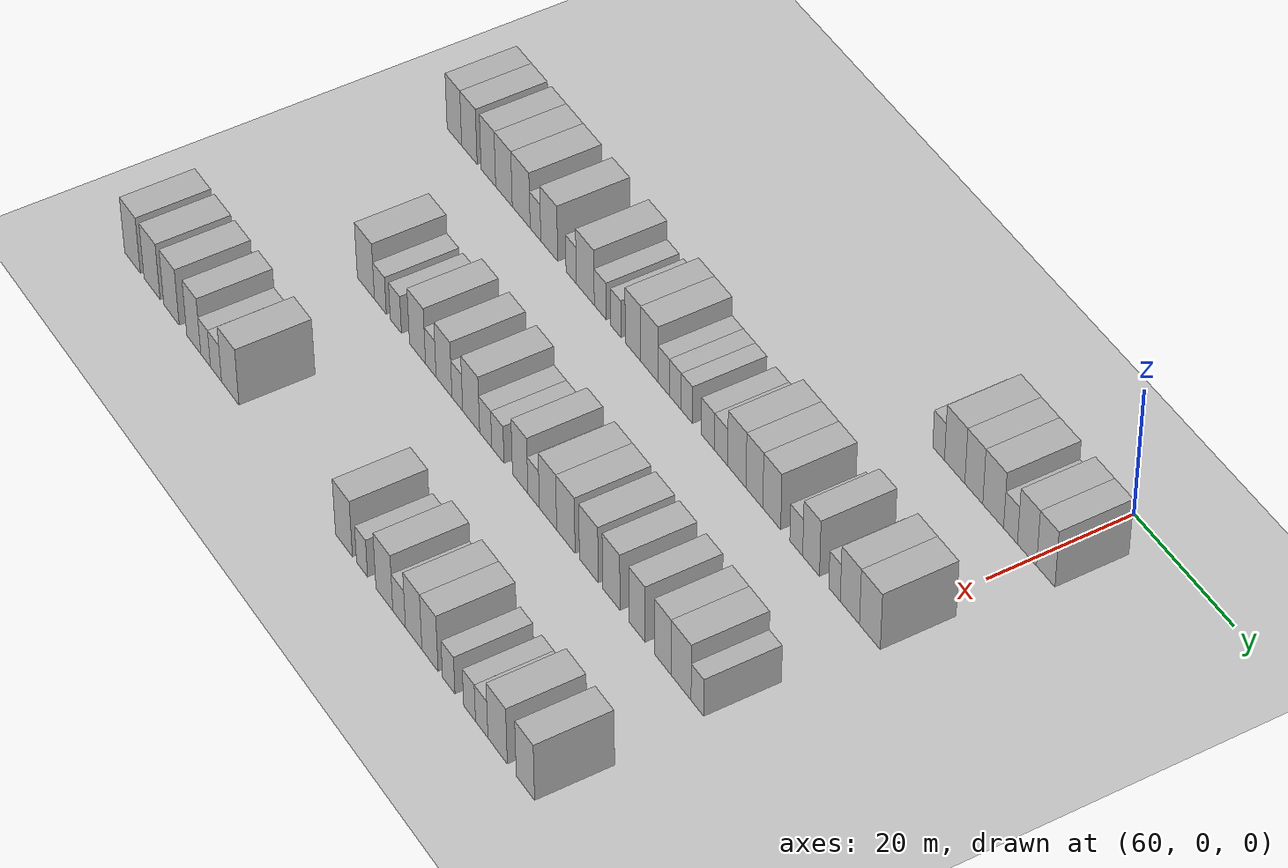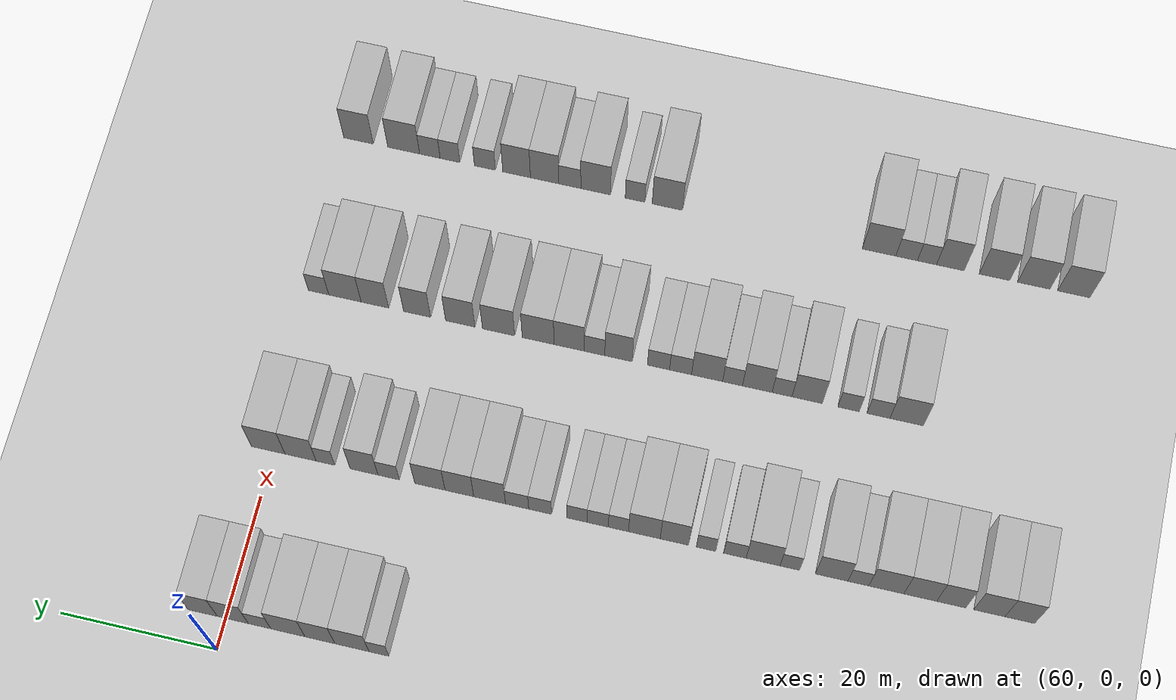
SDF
<sdf version="1.6">
 <world name="default">
  <include>
   <name>ground_plane_2</name>
   <uri>model://HANNAS_ground_plane</uri>
   <pose>100 0 0  0 0 0</pose>
  </include>
  <model name="building_485">
   <static>1</static>
   <pose>69.0000 -19.5323 0 0.000000 0.000000 0.000000</pose>
   <link name="link">
    <pose>0 0 3.00 0 0 0</pose>
    <collision name="collision"><geometry><box><size>10.0000 2.5244 6.0000</size></box></geometry></collision>
    <visual name="visual">
     <cast_shadows>0</cast_shadows>
     <geometry><box><size>10.0000 2.5244 6.0000</size></box></geometry>
     <material>
      <script>
       <uri>model://HANNAS_wall/materials/scripts</uri>
       <uri>model://HANNAS_wall/materials/textures</uri>
       <name>vrc/HANNAS_wall</name>
      </script>
     </material>
    </visual>
   </link>
  </model>
  <model name="building_486">
   <static>1</static>
   <pose>69.0000 -16.1030 0 0.000000 0.000000 0.000000</pose>
   <link name="link">
    <pose>0 0 4.50 0 0 0</pose>
    <collision name="collision"><geometry><box><size>10.0000 4.3342 9.0000</size></box></geometry></collision>
    <visual name="visual">
     <cast_shadows>0</cast_shadows>
     <geometry><box><size>10.0000 4.3342 9.0000</size></box></geometry>
     <material>
      <script>
       <uri>model://HANNAS_wall/materials/scripts</uri>
       <uri>model://HANNAS_wall/materials/textures</uri>
       <name>vrc/HANNAS_wall</name>
      </script>
     </material>
    </visual>
   </link>
  </model>
  <model name="building_487">
   <static>1</static>
   <pose>69.0000 -12.0336 0 0.000000 0.000000 0.000000</pose>
   <link name="link">
    <pose>0 0 4.50 0 0 0</pose>
    <collision name="collision"><geometry><box><size>10.0000 3.8046 9.0000</size></box></geometry></collision>
    <visual name="visual">
     <cast_shadows>0</cast_shadows>
     <geometry><box><size>10.0000 3.8046 9.0000</size></box></geometry>
     <material>
      <script>
       <uri>model://HANNAS_wall/materials/scripts</uri>
       <uri>model://HANNAS_wall/materials/textures</uri>
       <name>vrc/HANNAS_wall</name>
      </script>
     </material>
    </visual>
   </link>
  </model>
  <model name="building_488">
   <static>1</static>
   <pose>69.0000 -7.9467 0 0.000000 0.000000 0.000000</pose>
   <link name="link">
    <pose>0 0 4.50 0 0 0</pose>
    <collision name="collision"><geometry><box><size>10.0000 4.3692 9.0000</size></box></geometry></collision>
    <visual name="visual">
     <cast_shadows>0</cast_shadows>
     <geometry><box><size>10.0000 4.3692 9.0000</size></box></geometry>
     <material>
      <script>
       <uri>model://HANNAS_wall/materials/scripts</uri>
       <uri>model://HANNAS_wall/materials/textures</uri>
       <name>vrc/HANNAS_wall</name>
      </script>
     </material>
    </visual>
   </link>
  </model>
  <model name="building_489">
   <static>1</static>
   <pose>69.0000 -4.3219 0 0.000000 0.000000 0.000000</pose>
   <link name="link">
    <pose>0 0 3.00 0 0 0</pose>
    <collision name="collision"><geometry><box><size>10.0000 2.8804 6.0000</size></box></geometry></collision>
    <visual name="visual">
     <cast_shadows>0</cast_shadows>
     <geometry><box><size>10.0000 2.8804 6.0000</size></box></geometry>
     <material>
      <script>
       <uri>model://HANNAS_wall/materials/scripts</uri>
       <uri>model://HANNAS_wall/materials/textures</uri>
       <name>vrc/HANNAS_wall</name>
      </script>
     </material>
    </visual>
   </link>
  </model>
  <model name="building_490">
   <static>1</static>
   <pose>69.0000 -0.9053 0 0.000000 0.000000 0.000000</pose>
   <link name="link">
    <pose>0 0 4.50 0 0 0</pose>
    <collision name="collision"><geometry><box><size>10.0000 3.9529 9.0000</size></box></geometry></collision>
    <visual name="visual">
     <cast_shadows>0</cast_shadows>
     <geometry><box><size>10.0000 3.9529 9.0000</size></box></geometry>
     <material>
      <script>
       <uri>model://HANNAS_wall/materials/scripts</uri>
       <uri>model://HANNAS_wall/materials/textures</uri>
       <name>vrc/HANNAS_wall</name>
      </script>
     </material>
    </visual>
   </link>
  </model>
  <model name="building_491">
   <static>1</static>
   <pose>69.0000 2.9653 0 0.000000 0.000000 0.000000</pose>
   <link name="link">
    <pose>0 0 4.50 0 0 0</pose>
    <collision name="collision"><geometry><box><size>10.0000 3.7883 9.0000</size></box></geometry></collision>
    <visual name="visual">
     <cast_shadows>0</cast_shadows>
     <geometry><box><size>10.0000 3.7883 9.0000</size></box></geometry>
     <material>
      <script>
       <uri>model://HANNAS_wall/materials/scripts</uri>
       <uri>model://HANNAS_wall/materials/textures</uri>
       <name>vrc/HANNAS_wall</name>
      </script>
     </material>
    </visual>
   </link>
  </model>
  <model name="building_661">
   <static>1</static>
   <pose>91.0000 -95.5030 0 0.000000 0.000000 0.000000</pose>
   <link name="link">
    <pose>0 0 4.50 0 0 0</pose>
    <collision name="collision"><geometry><box><size>10.0000 3.7117 9.0000</size></box></geometry></collision>
    <visual name="visual">
     <cast_shadows>0</cast_shadows>
     <geometry><box><size>10.0000 3.7117 9.0000</size></box></geometry>
     <material>
      <script>
       <uri>model://HANNAS_wall/materials/scripts</uri>
       <uri>model://HANNAS_wall/materials/textures</uri>
       <name>vrc/HANNAS_wall</name>
      </script>
     </material>
    </visual>
   </link>
  </model>
  <model name="building_662">
   <static>1</static>
   <pose>91.0000 -91.6927 0 0.000000 0.000000 0.000000</pose>
   <link name="link">
    <pose>0 0 4.50 0 0 0</pose>
    <collision name="collision"><geometry><box><size>10.0000 3.9088 9.0000</size></box></geometry></collision>
    <visual name="visual">
     <cast_shadows>0</cast_shadows>
     <geometry><box><size>10.0000 3.9088 9.0000</size></box></geometry>
     <material>
      <script>
       <uri>model://HANNAS_wall/materials/scripts</uri>
       <uri>model://HANNAS_wall/materials/textures</uri>
       <name>vrc/HANNAS_wall</name>
      </script>
     </material>
    </visual>
   </link>
  </model>
  <model name="building_663">
   <static>1</static>
   <pose>91.0000 -86.9122 0 0.000000 0.000000 0.000000</pose>
   <link name="link">
    <pose>0 0 4.50 0 0 0</pose>
    <collision name="collision"><geometry><box><size>10.0000 3.6522 9.0000</size></box></geometry></collision>
    <visual name="visual">
     <cast_shadows>0</cast_shadows>
     <geometry><box><size>10.0000 3.6522 9.0000</size></box></geometry>
     <material>
      <script>
       <uri>model://HANNAS_wall/materials/scripts</uri>
       <uri>model://HANNAS_wall/materials/textures</uri>
       <name>vrc/HANNAS_wall</name>
      </script>
     </material>
    </visual>
   </link>
  </model>
  <model name="building_664">
   <static>1</static>
   <pose>91.0000 -83.0218 0 0.000000 0.000000 0.000000</pose>
   <link name="link">
    <pose>0 0 4.50 0 0 0</pose>
    <collision name="collision"><geometry><box><size>10.0000 4.1286 9.0000</size></box></geometry></collision>
    <visual name="visual">
     <cast_shadows>0</cast_shadows>
     <geometry><box><size>10.0000 4.1286 9.0000</size></box></geometry>
     <material>
      <script>
       <uri>model://HANNAS_wall/materials/scripts</uri>
       <uri>model://HANNAS_wall/materials/textures</uri>
       <name>vrc/HANNAS_wall</name>
      </script>
     </material>
    </visual>
   </link>
  </model>
  <model name="building_665">
   <static>1</static>
   <pose>91.0000 -78.7483 0 0.000000 0.000000 0.000000</pose>
   <link name="link">
    <pose>0 0 4.50 0 0 0</pose>
    <collision name="collision"><geometry><box><size>10.0000 4.4184 9.0000</size></box></geometry></collision>
    <visual name="visual">
     <cast_shadows>0</cast_shadows>
     <geometry><box><size>10.0000 4.4184 9.0000</size></box></geometry>
     <material>
      <script>
       <uri>model://HANNAS_wall/materials/scripts</uri>
       <uri>model://HANNAS_wall/materials/textures</uri>
       <name>vrc/HANNAS_wall</name>
      </script>
     </material>
    </visual>
   </link>
  </model>
  <model name="building_666">
   <static>1</static>
   <pose>91.0000 -75.2286 0 0.000000 0.000000 0.000000</pose>
   <link name="link">
    <pose>0 0 3.00 0 0 0</pose>
    <collision name="collision"><geometry><box><size>10.0000 2.6210 6.0000</size></box></geometry></collision>
    <visual name="visual">
     <cast_shadows>0</cast_shadows>
     <geometry><box><size>10.0000 2.6210 6.0000</size></box></geometry>
     <material>
      <script>
       <uri>model://HANNAS_wall/materials/scripts</uri>
       <uri>model://HANNAS_wall/materials/textures</uri>
       <name>vrc/HANNAS_wall</name>
      </script>
     </material>
    </visual>
   </link>
  </model>
  <model name="building_667">
   <static>1</static>
   <pose>91.0000 -71.8541 0 0.000000 0.000000 0.000000</pose>
   <link name="link">
    <pose>0 0 4.50 0 0 0</pose>
    <collision name="collision"><geometry><box><size>10.0000 4.1279 9.0000</size></box></geometry></collision>
    <visual name="visual">
     <cast_shadows>0</cast_shadows>
     <geometry><box><size>10.0000 4.1279 9.0000</size></box></geometry>
     <material>
      <script>
       <uri>model://HANNAS_wall/materials/scripts</uri>
       <uri>model://HANNAS_wall/materials/textures</uri>
       <name>vrc/HANNAS_wall</name>
      </script>
     </material>
    </visual>
   </link>
  </model>
  <model name="building_668">
   <static>1</static>
   <pose>91.0000 -66.5443 0 0.000000 0.000000 0.000000</pose>
   <link name="link">
    <pose>0 0 3.00 0 0 0</pose>
    <collision name="collision"><geometry><box><size>10.0000 2.4916 6.0000</size></box></geometry></collision>
    <visual name="visual">
     <cast_shadows>0</cast_shadows>
     <geometry><box><size>10.0000 2.4916 6.0000</size></box></geometry>
     <material>
      <script>
       <uri>model://HANNAS_wall/materials/scripts</uri>
       <uri>model://HANNAS_wall/materials/textures</uri>
       <name>vrc/HANNAS_wall</name>
      </script>
     </material>
    </visual>
   </link>
  </model>
  <model name="building_669">
   <static>1</static>
   <pose>91.0000 -63.1488 0 0.000000 0.000000 0.000000</pose>
   <link name="link">
    <pose>0 0 4.50 0 0 0</pose>
    <collision name="collision"><geometry><box><size>10.0000 4.2995 9.0000</size></box></geometry></collision>
    <visual name="visual">
     <cast_shadows>0</cast_shadows>
     <geometry><box><size>10.0000 4.2995 9.0000</size></box></geometry>
     <material>
      <script>
       <uri>model://HANNAS_wall/materials/scripts</uri>
       <uri>model://HANNAS_wall/materials/textures</uri>
       <name>vrc/HANNAS_wall</name>
      </script>
     </material>
    </visual>
   </link>
  </model>
  <model name="building_670">
   <static>1</static>
   <pose>91.0000 -59.5651 0 0.000000 0.000000 0.000000</pose>
   <link name="link">
    <pose>0 0 3.00 0 0 0</pose>
    <collision name="collision"><geometry><box><size>10.0000 2.8678 6.0000</size></box></geometry></collision>
    <visual name="visual">
     <cast_shadows>0</cast_shadows>
     <geometry><box><size>10.0000 2.8678 6.0000</size></box></geometry>
     <material>
      <script>
       <uri>model://HANNAS_wall/materials/scripts</uri>
       <uri>model://HANNAS_wall/materials/textures</uri>
       <name>vrc/HANNAS_wall</name>
      </script>
     </material>
    </visual>
   </link>
  </model>
  <model name="building_671">
   <static>1</static>
   <pose>91.0000 -55.8934 0 0.000000 0.000000 0.000000</pose>
   <link name="link">
    <pose>0 0 3.00 0 0 0</pose>
    <collision name="collision"><geometry><box><size>10.0000 2.4755 6.0000</size></box></geometry></collision>
    <visual name="visual">
     <cast_shadows>0</cast_shadows>
     <geometry><box><size>10.0000 2.4755 6.0000</size></box></geometry>
     <material>
      <script>
       <uri>model://HANNAS_wall/materials/scripts</uri>
       <uri>model://HANNAS_wall/materials/textures</uri>
       <name>vrc/HANNAS_wall</name>
      </script>
     </material>
    </visual>
   </link>
  </model>
  <model name="building_672">
   <static>1</static>
   <pose>91.0000 -51.8501 0 0.000000 0.000000 0.000000</pose>
   <link name="link">
    <pose>0 0 4.50 0 0 0</pose>
    <collision name="collision"><geometry><box><size>10.0000 3.6111 9.0000</size></box></geometry></collision>
    <visual name="visual">
     <cast_shadows>0</cast_shadows>
     <geometry><box><size>10.0000 3.6111 9.0000</size></box></geometry>
     <material>
      <script>
       <uri>model://HANNAS_wall/materials/scripts</uri>
       <uri>model://HANNAS_wall/materials/textures</uri>
       <name>vrc/HANNAS_wall</name>
      </script>
     </material>
    </visual>
   </link>
  </model>
  <model name="building_673">
   <static>1</static>
   <pose>91.0000 -48.0138 0 0.000000 0.000000 0.000000</pose>
   <link name="link">
    <pose>0 0 4.50 0 0 0</pose>
    <collision name="collision"><geometry><box><size>10.0000 4.0615 9.0000</size></box></geometry></collision>
    <visual name="visual">
     <cast_shadows>0</cast_shadows>
     <geometry><box><size>10.0000 4.0615 9.0000</size></box></geometry>
     <material>
      <script>
       <uri>model://HANNAS_wall/materials/scripts</uri>
       <uri>model://HANNAS_wall/materials/textures</uri>
       <name>vrc/HANNAS_wall</name>
      </script>
     </material>
    </visual>
   </link>
  </model>
  <model name="building_674">
   <static>1</static>
   <pose>91.0000 -44.6890 0 0.000000 0.000000 0.000000</pose>
   <link name="link">
    <pose>0 0 3.00 0 0 0</pose>
    <collision name="collision"><geometry><box><size>10.0000 2.5881 6.0000</size></box></geometry></collision>
    <visual name="visual">
     <cast_shadows>0</cast_shadows>
     <geometry><box><size>10.0000 2.5881 6.0000</size></box></geometry>
     <material>
      <script>
       <uri>model://HANNAS_wall/materials/scripts</uri>
       <uri>model://HANNAS_wall/materials/textures</uri>
       <name>vrc/HANNAS_wall</name>
      </script>
     </material>
    </visual>
   </link>
  </model>
  <model name="building_675">
   <static>1</static>
   <pose>91.0000 -42.0295 0 0.000000 0.000000 0.000000</pose>
   <link name="link">
    <pose>0 0 3.00 0 0 0</pose>
    <collision name="collision"><geometry><box><size>10.0000 2.7310 6.0000</size></box></geometry></collision>
    <visual name="visual">
     <cast_shadows>0</cast_shadows>
     <geometry><box><size>10.0000 2.7310 6.0000</size></box></geometry>
     <material>
      <script>
       <uri>model://HANNAS_wall/materials/scripts</uri>
       <uri>model://HANNAS_wall/materials/textures</uri>
       <name>vrc/HANNAS_wall</name>
      </script>
     </material>
    </visual>
   </link>
  </model>
  <model name="building_676">
   <static>1</static>
   <pose>91.0000 -39.3779 0 0.000000 0.000000 0.000000</pose>
   <link name="link">
    <pose>0 0 3.00 0 0 0</pose>
    <collision name="collision"><geometry><box><size>10.0000 2.5721 6.0000</size></box></geometry></collision>
    <visual name="visual">
     <cast_shadows>0</cast_shadows>
     <geometry><box><size>10.0000 2.5721 6.0000</size></box></geometry>
     <material>
      <script>
       <uri>model://HANNAS_wall/materials/scripts</uri>
       <uri>model://HANNAS_wall/materials/textures</uri>
       <name>vrc/HANNAS_wall</name>
      </script>
     </material>
    </visual>
   </link>
  </model>
  <model name="building_677">
   <static>1</static>
   <pose>91.0000 -34.6170 0 0.000000 0.000000 0.000000</pose>
   <link name="link">
    <pose>0 0 3.00 0 0 0</pose>
    <collision name="collision"><geometry><box><size>10.0000 2.9498 6.0000</size></box></geometry></collision>
    <visual name="visual">
     <cast_shadows>0</cast_shadows>
     <geometry><box><size>10.0000 2.9498 6.0000</size></box></geometry>
     <material>
      <script>
       <uri>model://HANNAS_wall/materials/scripts</uri>
       <uri>model://HANNAS_wall/materials/textures</uri>
       <name>vrc/HANNAS_wall</name>
      </script>
     </material>
    </visual>
   </link>
  </model>
  <model name="building_678">
   <static>1</static>
   <pose>91.0000 -31.6439 0 0.000000 0.000000 0.000000</pose>
   <link name="link">
    <pose>0 0 3.00 0 0 0</pose>
    <collision name="collision"><geometry><box><size>10.0000 2.9964 6.0000</size></box></geometry></collision>
    <visual name="visual">
     <cast_shadows>0</cast_shadows>
     <geometry><box><size>10.0000 2.9964 6.0000</size></box></geometry>
     <material>
      <script>
       <uri>model://HANNAS_wall/materials/scripts</uri>
       <uri>model://HANNAS_wall/materials/textures</uri>
       <name>vrc/HANNAS_wall</name>
      </script>
     </material>
    </visual>
   </link>
  </model>
  <model name="building_679">
   <static>1</static>
   <pose>91.0000 -28.0928 0 0.000000 0.000000 0.000000</pose>
   <link name="link">
    <pose>0 0 4.50 0 0 0</pose>
    <collision name="collision"><geometry><box><size>10.0000 4.1058 9.0000</size></box></geometry></collision>
    <visual name="visual">
     <cast_shadows>0</cast_shadows>
     <geometry><box><size>10.0000 4.1058 9.0000</size></box></geometry>
     <material>
      <script>
       <uri>model://HANNAS_wall/materials/scripts</uri>
       <uri>model://HANNAS_wall/materials/textures</uri>
       <name>vrc/HANNAS_wall</name>
      </script>
     </material>
    </visual>
   </link>
  </model>
  <model name="building_680">
   <static>1</static>
   <pose>91.0000 -24.1806 0 0.000000 0.000000 0.000000</pose>
   <link name="link">
    <pose>0 0 4.50 0 0 0</pose>
    <collision name="collision"><geometry><box><size>10.0000 3.7185 9.0000</size></box></geometry></collision>
    <visual name="visual">
     <cast_shadows>0</cast_shadows>
     <geometry><box><size>10.0000 3.7185 9.0000</size></box></geometry>
     <material>
      <script>
       <uri>model://HANNAS_wall/materials/scripts</uri>
       <uri>model://HANNAS_wall/materials/textures</uri>
       <name>vrc/HANNAS_wall</name>
      </script>
     </material>
    </visual>
   </link>
  </model>
  <model name="building_681">
   <static>1</static>
   <pose>91.0000 -20.3501 0 0.000000 0.000000 0.000000</pose>
   <link name="link">
    <pose>0 0 4.50 0 0 0</pose>
    <collision name="collision"><geometry><box><size>10.0000 3.9426 9.0000</size></box></geometry></collision>
    <visual name="visual">
     <cast_shadows>0</cast_shadows>
     <geometry><box><size>10.0000 3.9426 9.0000</size></box></geometry>
     <material>
      <script>
       <uri>model://HANNAS_wall/materials/scripts</uri>
       <uri>model://HANNAS_wall/materials/textures</uri>
       <name>vrc/HANNAS_wall</name>
      </script>
     </material>
    </visual>
   </link>
  </model>
  <model name="building_682">
   <static>1</static>
   <pose>91.0000 -14.9847 0 0.000000 0.000000 0.000000</pose>
   <link name="link">
    <pose>0 0 3.00 0 0 0</pose>
    <collision name="collision"><geometry><box><size>10.0000 2.7882 6.0000</size></box></geometry></collision>
    <visual name="visual">
     <cast_shadows>0</cast_shadows>
     <geometry><box><size>10.0000 2.7882 6.0000</size></box></geometry>
     <material>
      <script>
       <uri>model://HANNAS_wall/materials/scripts</uri>
       <uri>model://HANNAS_wall/materials/textures</uri>
       <name>vrc/HANNAS_wall</name>
      </script>
     </material>
    </visual>
   </link>
  </model>
  <model name="building_683">
   <static>1</static>
   <pose>91.0000 -11.7721 0 0.000000 0.000000 0.000000</pose>
   <link name="link">
    <pose>0 0 4.50 0 0 0</pose>
    <collision name="collision"><geometry><box><size>10.0000 3.6370 9.0000</size></box></geometry></collision>
    <visual name="visual">
     <cast_shadows>0</cast_shadows>
     <geometry><box><size>10.0000 3.6370 9.0000</size></box></geometry>
     <material>
      <script>
       <uri>model://HANNAS_wall/materials/scripts</uri>
       <uri>model://HANNAS_wall/materials/textures</uri>
       <name>vrc/HANNAS_wall</name>
      </script>
     </material>
    </visual>
   </link>
  </model>
  <model name="building_684">
   <static>1</static>
   <pose>91.0000 -6.7319 0 0.000000 0.000000 0.000000</pose>
   <link name="link">
    <pose>0 0 3.00 0 0 0</pose>
    <collision name="collision"><geometry><box><size>10.0000 2.4434 6.0000</size></box></geometry></collision>
    <visual name="visual">
     <cast_shadows>0</cast_shadows>
     <geometry><box><size>10.0000 2.4434 6.0000</size></box></geometry>
     <material>
      <script>
       <uri>model://HANNAS_wall/materials/scripts</uri>
       <uri>model://HANNAS_wall/materials/textures</uri>
       <name>vrc/HANNAS_wall</name>
      </script>
     </material>
    </visual>
   </link>
  </model>
  <model name="building_685">
   <static>1</static>
   <pose>91.0000 -3.4625 0 0.000000 0.000000 0.000000</pose>
   <link name="link">
    <pose>0 0 4.50 0 0 0</pose>
    <collision name="collision"><geometry><box><size>10.0000 4.0954 9.0000</size></box></geometry></collision>
    <visual name="visual">
     <cast_shadows>0</cast_shadows>
     <geometry><box><size>10.0000 4.0954 9.0000</size></box></geometry>
     <material>
      <script>
       <uri>model://HANNAS_wall/materials/scripts</uri>
       <uri>model://HANNAS_wall/materials/textures</uri>
       <name>vrc/HANNAS_wall</name>
      </script>
     </material>
    </visual>
   </link>
  </model>
  <model name="building_686">
   <static>1</static>
   <pose>91.0000 0.7857 0 0.000000 0.000000 0.000000</pose>
   <link name="link">
    <pose>0 0 4.50 0 0 0</pose>
    <collision name="collision"><geometry><box><size>10.0000 4.4011 9.0000</size></box></geometry></collision>
    <visual name="visual">
     <cast_shadows>0</cast_shadows>
     <geometry><box><size>10.0000 4.4011 9.0000</size></box></geometry>
     <material>
      <script>
       <uri>model://HANNAS_wall/materials/scripts</uri>
       <uri>model://HANNAS_wall/materials/textures</uri>
       <name>vrc/HANNAS_wall</name>
      </script>
     </material>
    </visual>
   </link>
  </model>
  <model name="building_849">
   <static>1</static>
   <pose>113.0000 -77.2934 0 0.000000 0.000000 0.000000</pose>
   <link name="link">
    <pose>0 0 4.50 0 0 0</pose>
    <collision name="collision"><geometry><box><size>10.0000 4.3135 9.0000</size></box></geometry></collision>
    <visual name="visual">
     <cast_shadows>0</cast_shadows>
     <geometry><box><size>10.0000 4.3135 9.0000</size></box></geometry>
     <material>
      <script>
       <uri>model://HANNAS_wall/materials/scripts</uri>
       <uri>model://HANNAS_wall/materials/textures</uri>
       <name>vrc/HANNAS_wall</name>
      </script>
     </material>
    </visual>
   </link>
  </model>
  <model name="building_850">
   <static>1</static>
   <pose>113.0000 -73.6509 0 0.000000 0.000000 0.000000</pose>
   <link name="link">
    <pose>0 0 3.00 0 0 0</pose>
    <collision name="collision"><geometry><box><size>10.0000 2.9716 6.0000</size></box></geometry></collision>
    <visual name="visual">
     <cast_shadows>0</cast_shadows>
     <geometry><box><size>10.0000 2.9716 6.0000</size></box></geometry>
     <material>
      <script>
       <uri>model://HANNAS_wall/materials/scripts</uri>
       <uri>model://HANNAS_wall/materials/textures</uri>
       <name>vrc/HANNAS_wall</name>
      </script>
     </material>
    </visual>
   </link>
  </model>
  <model name="building_851">
   <static>1</static>
   <pose>113.0000 -69.7766 0 0.000000 0.000000 0.000000</pose>
   <link name="link">
    <pose>0 0 3.00 0 0 0</pose>
    <collision name="collision"><geometry><box><size>10.0000 2.7769 6.0000</size></box></geometry></collision>
    <visual name="visual">
     <cast_shadows>0</cast_shadows>
     <geometry><box><size>10.0000 2.7769 6.0000</size></box></geometry>
     <material>
      <script>
       <uri>model://HANNAS_wall/materials/scripts</uri>
       <uri>model://HANNAS_wall/materials/textures</uri>
       <name>vrc/HANNAS_wall</name>
      </script>
     </material>
    </visual>
   </link>
  </model>
  <model name="building_852">
   <static>1</static>
   <pose>113.0000 -64.4071 0 0.000000 0.000000 0.000000</pose>
   <link name="link">
    <pose>0 0 4.50 0 0 0</pose>
    <collision name="collision"><geometry><box><size>10.0000 3.9620 9.0000</size></box></geometry></collision>
    <visual name="visual">
     <cast_shadows>0</cast_shadows>
     <geometry><box><size>10.0000 3.9620 9.0000</size></box></geometry>
     <material>
      <script>
       <uri>model://HANNAS_wall/materials/scripts</uri>
       <uri>model://HANNAS_wall/materials/textures</uri>
       <name>vrc/HANNAS_wall</name>
      </script>
     </material>
    </visual>
   </link>
  </model>
  <model name="building_853">
   <static>1</static>
   <pose>113.0000 -61.1305 0 0.000000 0.000000 0.000000</pose>
   <link name="link">
    <pose>0 0 3.00 0 0 0</pose>
    <collision name="collision"><geometry><box><size>10.0000 2.5912 6.0000</size></box></geometry></collision>
    <visual name="visual">
     <cast_shadows>0</cast_shadows>
     <geometry><box><size>10.0000 2.5912 6.0000</size></box></geometry>
     <material>
      <script>
       <uri>model://HANNAS_wall/materials/scripts</uri>
       <uri>model://HANNAS_wall/materials/textures</uri>
       <name>vrc/HANNAS_wall</name>
      </script>
     </material>
    </visual>
   </link>
  </model>
  <model name="building_854">
   <static>1</static>
   <pose>113.0000 -57.8998 0 0.000000 0.000000 0.000000</pose>
   <link name="link">
    <pose>0 0 4.50 0 0 0</pose>
    <collision name="collision"><geometry><box><size>10.0000 3.8703 9.0000</size></box></geometry></collision>
    <visual name="visual">
     <cast_shadows>0</cast_shadows>
     <geometry><box><size>10.0000 3.8703 9.0000</size></box></geometry>
     <material>
      <script>
       <uri>model://HANNAS_wall/materials/scripts</uri>
       <uri>model://HANNAS_wall/materials/textures</uri>
       <name>vrc/HANNAS_wall</name>
      </script>
     </material>
    </visual>
   </link>
  </model>
  <model name="building_855">
   <static>1</static>
   <pose>113.0000 -54.6690 0 0.000000 0.000000 0.000000</pose>
   <link name="link">
    <pose>0 0 3.00 0 0 0</pose>
    <collision name="collision"><geometry><box><size>10.0000 2.5912 6.0000</size></box></geometry></collision>
    <visual name="visual">
     <cast_shadows>0</cast_shadows>
     <geometry><box><size>10.0000 2.5912 6.0000</size></box></geometry>
     <material>
      <script>
       <uri>model://HANNAS_wall/materials/scripts</uri>
       <uri>model://HANNAS_wall/materials/textures</uri>
       <name>vrc/HANNAS_wall</name>
      </script>
     </material>
    </visual>
   </link>
  </model>
  <model name="building_856">
   <static>1</static>
   <pose>113.0000 -51.3396 0 0.000000 0.000000 0.000000</pose>
   <link name="link">
    <pose>0 0 4.50 0 0 0</pose>
    <collision name="collision"><geometry><box><size>10.0000 4.0676 9.0000</size></box></geometry></collision>
    <visual name="visual">
     <cast_shadows>0</cast_shadows>
     <geometry><box><size>10.0000 4.0676 9.0000</size></box></geometry>
     <material>
      <script>
       <uri>model://HANNAS_wall/materials/scripts</uri>
       <uri>model://HANNAS_wall/materials/textures</uri>
       <name>vrc/HANNAS_wall</name>
      </script>
     </material>
    </visual>
   </link>
  </model>
  <model name="building_857">
   <static>1</static>
   <pose>113.0000 -47.8619 0 0.000000 0.000000 0.000000</pose>
   <link name="link">
    <pose>0 0 3.00 0 0 0</pose>
    <collision name="collision"><geometry><box><size>10.0000 2.8878 6.0000</size></box></geometry></collision>
    <visual name="visual">
     <cast_shadows>0</cast_shadows>
     <geometry><box><size>10.0000 2.8878 6.0000</size></box></geometry>
     <material>
      <script>
       <uri>model://HANNAS_wall/materials/scripts</uri>
       <uri>model://HANNAS_wall/materials/textures</uri>
       <name>vrc/HANNAS_wall</name>
      </script>
     </material>
    </visual>
   </link>
  </model>
  <model name="building_858">
   <static>1</static>
   <pose>113.0000 -44.9651 0 0.000000 0.000000 0.000000</pose>
   <link name="link">
    <pose>0 0 3.00 0 0 0</pose>
    <collision name="collision"><geometry><box><size>10.0000 2.9058 6.0000</size></box></geometry></collision>
    <visual name="visual">
     <cast_shadows>0</cast_shadows>
     <geometry><box><size>10.0000 2.9058 6.0000</size></box></geometry>
     <material>
      <script>
       <uri>model://HANNAS_wall/materials/scripts</uri>
       <uri>model://HANNAS_wall/materials/textures</uri>
       <name>vrc/HANNAS_wall</name>
      </script>
     </material>
    </visual>
   </link>
  </model>
  <model name="building_859">
   <static>1</static>
   <pose>113.0000 -39.7027 0 0.000000 0.000000 0.000000</pose>
   <link name="link">
    <pose>0 0 4.50 0 0 0</pose>
    <collision name="collision"><geometry><box><size>10.0000 3.6190 9.0000</size></box></geometry></collision>
    <visual name="visual">
     <cast_shadows>0</cast_shadows>
     <geometry><box><size>10.0000 3.6190 9.0000</size></box></geometry>
     <material>
      <script>
       <uri>model://HANNAS_wall/materials/scripts</uri>
       <uri>model://HANNAS_wall/materials/textures</uri>
       <name>vrc/HANNAS_wall</name>
      </script>
     </material>
    </visual>
   </link>
  </model>
  <model name="building_860">
   <static>1</static>
   <pose>113.0000 -36.5508 0 0.000000 0.000000 0.000000</pose>
   <link name="link">
    <pose>0 0 3.00 0 0 0</pose>
    <collision name="collision"><geometry><box><size>10.0000 2.6847 6.0000</size></box></geometry></collision>
    <visual name="visual">
     <cast_shadows>0</cast_shadows>
     <geometry><box><size>10.0000 2.6847 6.0000</size></box></geometry>
     <material>
      <script>
       <uri>model://HANNAS_wall/materials/scripts</uri>
       <uri>model://HANNAS_wall/materials/textures</uri>
       <name>vrc/HANNAS_wall</name>
      </script>
     </material>
    </visual>
   </link>
  </model>
  <model name="building_861">
   <static>1</static>
   <pose>113.0000 -33.2095 0 0.000000 0.000000 0.000000</pose>
   <link name="link">
    <pose>0 0 4.50 0 0 0</pose>
    <collision name="collision"><geometry><box><size>10.0000 3.9980 9.0000</size></box></geometry></collision>
    <visual name="visual">
     <cast_shadows>0</cast_shadows>
     <geometry><box><size>10.0000 3.9980 9.0000</size></box></geometry>
     <material>
      <script>
       <uri>model://HANNAS_wall/materials/scripts</uri>
       <uri>model://HANNAS_wall/materials/textures</uri>
       <name>vrc/HANNAS_wall</name>
      </script>
     </material>
    </visual>
   </link>
  </model>
  <model name="building_862">
   <static>1</static>
   <pose>113.0000 -29.0966 0 0.000000 0.000000 0.000000</pose>
   <link name="link">
    <pose>0 0 4.50 0 0 0</pose>
    <collision name="collision"><geometry><box><size>10.0000 4.2278 9.0000</size></box></geometry></collision>
    <visual name="visual">
     <cast_shadows>0</cast_shadows>
     <geometry><box><size>10.0000 4.2278 9.0000</size></box></geometry>
     <material>
      <script>
       <uri>model://HANNAS_wall/materials/scripts</uri>
       <uri>model://HANNAS_wall/materials/textures</uri>
       <name>vrc/HANNAS_wall</name>
      </script>
     </material>
    </visual>
   </link>
  </model>
  <model name="building_863">
   <static>1</static>
   <pose>113.0000 -23.8445 0 0.000000 0.000000 0.000000</pose>
   <link name="link">
    <pose>0 0 4.50 0 0 0</pose>
    <collision name="collision"><geometry><box><size>10.0000 4.2766 9.0000</size></box></geometry></collision>
    <visual name="visual">
     <cast_shadows>0</cast_shadows>
     <geometry><box><size>10.0000 4.2766 9.0000</size></box></geometry>
     <material>
      <script>
       <uri>model://HANNAS_wall/materials/scripts</uri>
       <uri>model://HANNAS_wall/materials/textures</uri>
       <name>vrc/HANNAS_wall</name>
      </script>
     </material>
    </visual>
   </link>
  </model>
  <model name="building_864">
   <static>1</static>
   <pose>113.0000 -18.7565 0 0.000000 0.000000 0.000000</pose>
   <link name="link">
    <pose>0 0 4.50 0 0 0</pose>
    <collision name="collision"><geometry><box><size>10.0000 3.8994 9.0000</size></box></geometry></collision>
    <visual name="visual">
     <cast_shadows>0</cast_shadows>
     <geometry><box><size>10.0000 3.8994 9.0000</size></box></geometry>
     <material>
      <script>
       <uri>model://HANNAS_wall/materials/scripts</uri>
       <uri>model://HANNAS_wall/materials/textures</uri>
       <name>vrc/HANNAS_wall</name>
      </script>
     </material>
    </visual>
   </link>
  </model>
  <model name="building_865">
   <static>1</static>
   <pose>113.0000 -13.0013 0 0.000000 0.000000 0.000000</pose>
   <link name="link">
    <pose>0 0 4.50 0 0 0</pose>
    <collision name="collision"><geometry><box><size>10.0000 3.6110 9.0000</size></box></geometry></collision>
    <visual name="visual">
     <cast_shadows>0</cast_shadows>
     <geometry><box><size>10.0000 3.6110 9.0000</size></box></geometry>
     <material>
      <script>
       <uri>model://HANNAS_wall/materials/scripts</uri>
       <uri>model://HANNAS_wall/materials/textures</uri>
       <name>vrc/HANNAS_wall</name>
      </script>
     </material>
    </visual>
   </link>
  </model>
  <model name="building_866">
   <static>1</static>
   <pose>113.0000 -7.3511 0 0.000000 0.000000 0.000000</pose>
   <link name="link">
    <pose>0 0 4.50 0 0 0</pose>
    <collision name="collision"><geometry><box><size>10.0000 3.6895 9.0000</size></box></geometry></collision>
    <visual name="visual">
     <cast_shadows>0</cast_shadows>
     <geometry><box><size>10.0000 3.6895 9.0000</size></box></geometry>
     <material>
      <script>
       <uri>model://HANNAS_wall/materials/scripts</uri>
       <uri>model://HANNAS_wall/materials/textures</uri>
       <name>vrc/HANNAS_wall</name>
      </script>
     </material>
    </visual>
   </link>
  </model>
  <model name="building_867">
   <static>1</static>
   <pose>113.0000 -3.3327 0 0.000000 0.000000 0.000000</pose>
   <link name="link">
    <pose>0 0 4.50 0 0 0</pose>
    <collision name="collision"><geometry><box><size>10.0000 4.3473 9.0000</size></box></geometry></collision>
    <visual name="visual">
     <cast_shadows>0</cast_shadows>
     <geometry><box><size>10.0000 4.3473 9.0000</size></box></geometry>
     <material>
      <script>
       <uri>model://HANNAS_wall/materials/scripts</uri>
       <uri>model://HANNAS_wall/materials/textures</uri>
       <name>vrc/HANNAS_wall</name>
      </script>
     </material>
    </visual>
   </link>
  </model>
  <model name="building_868">
   <static>1</static>
   <pose>113.0000 0.2046 0 0.000000 0.000000 0.000000</pose>
   <link name="link">
    <pose>0 0 3.00 0 0 0</pose>
    <collision name="collision"><geometry><box><size>10.0000 2.7272 6.0000</size></box></geometry></collision>
    <visual name="visual">
     <cast_shadows>0</cast_shadows>
     <geometry><box><size>10.0000 2.7272 6.0000</size></box></geometry>
     <material>
      <script>
       <uri>model://HANNAS_wall/materials/scripts</uri>
       <uri>model://HANNAS_wall/materials/textures</uri>
       <name>vrc/HANNAS_wall</name>
      </script>
     </material>
    </visual>
   </link>
  </model>
  <model name="building_1037">
   <static>1</static>
   <pose>135.0000 -95.3194 0 0.000000 0.000000 0.000000</pose>
   <link name="link">
    <pose>0 0 4.50 0 0 0</pose>
    <collision name="collision"><geometry><box><size>10.0000 4.2161 9.0000</size></box></geometry></collision>
    <visual name="visual">
     <cast_shadows>0</cast_shadows>
     <geometry><box><size>10.0000 4.2161 9.0000</size></box></geometry>
     <material>
      <script>
       <uri>model://HANNAS_wall/materials/scripts</uri>
       <uri>model://HANNAS_wall/materials/textures</uri>
       <name>vrc/HANNAS_wall</name>
      </script>
     </material>
    </visual>
   </link>
  </model>
  <model name="building_1038">
   <static>1</static>
   <pose>135.0000 -90.0740 0 0.000000 0.000000 0.000000</pose>
   <link name="link">
    <pose>0 0 4.50 0 0 0</pose>
    <collision name="collision"><geometry><box><size>10.0000 4.2747 9.0000</size></box></geometry></collision>
    <visual name="visual">
     <cast_shadows>0</cast_shadows>
     <geometry><box><size>10.0000 4.2747 9.0000</size></box></geometry>
     <material>
      <script>
       <uri>model://HANNAS_wall/materials/scripts</uri>
       <uri>model://HANNAS_wall/materials/textures</uri>
       <name>vrc/HANNAS_wall</name>
      </script>
     </material>
    </visual>
   </link>
  </model>
  <model name="building_1039">
   <static>1</static>
   <pose>135.0000 -84.9149 0 0.000000 0.000000 0.000000</pose>
   <link name="link">
    <pose>0 0 4.50 0 0 0</pose>
    <collision name="collision"><geometry><box><size>10.0000 4.0435 9.0000</size></box></geometry></collision>
    <visual name="visual">
     <cast_shadows>0</cast_shadows>
     <geometry><box><size>10.0000 4.0435 9.0000</size></box></geometry>
     <material>
      <script>
       <uri>model://HANNAS_wall/materials/scripts</uri>
       <uri>model://HANNAS_wall/materials/textures</uri>
       <name>vrc/HANNAS_wall</name>
      </script>
     </material>
    </visual>
   </link>
  </model>
  <model name="building_1040">
   <static>1</static>
   <pose>135.0000 -79.0677 0 0.000000 0.000000 0.000000</pose>
   <link name="link">
    <pose>0 0 4.50 0 0 0</pose>
    <collision name="collision"><geometry><box><size>10.0000 3.6509 9.0000</size></box></geometry></collision>
    <visual name="visual">
     <cast_shadows>0</cast_shadows>
     <geometry><box><size>10.0000 3.6509 9.0000</size></box></geometry>
     <material>
      <script>
       <uri>model://HANNAS_wall/materials/scripts</uri>
       <uri>model://HANNAS_wall/materials/textures</uri>
       <name>vrc/HANNAS_wall</name>
      </script>
     </material>
    </visual>
   </link>
  </model>
  <model name="building_1041">
   <static>1</static>
   <pose>135.0000 -75.9825 0 0.000000 0.000000 0.000000</pose>
   <link name="link">
    <pose>0 0 3.00 0 0 0</pose>
    <collision name="collision"><geometry><box><size>10.0000 2.5196 6.0000</size></box></geometry></collision>
    <visual name="visual">
     <cast_shadows>0</cast_shadows>
     <geometry><box><size>10.0000 2.5196 6.0000</size></box></geometry>
     <material>
      <script>
       <uri>model://HANNAS_wall/materials/scripts</uri>
       <uri>model://HANNAS_wall/materials/textures</uri>
       <name>vrc/HANNAS_wall</name>
      </script>
     </material>
    </visual>
   </link>
  </model>
  <model name="building_1042">
   <static>1</static>
   <pose>135.0000 -73.2930 0 0.000000 0.000000 0.000000</pose>
   <link name="link">
    <pose>0 0 3.00 0 0 0</pose>
    <collision name="collision"><geometry><box><size>10.0000 2.8594 6.0000</size></box></geometry></collision>
    <visual name="visual">
     <cast_shadows>0</cast_shadows>
     <geometry><box><size>10.0000 2.8594 6.0000</size></box></geometry>
     <material>
      <script>
       <uri>model://HANNAS_wall/materials/scripts</uri>
       <uri>model://HANNAS_wall/materials/textures</uri>
       <name>vrc/HANNAS_wall</name>
      </script>
     </material>
    </visual>
   </link>
  </model>
  <model name="building_1043">
   <static>1</static>
   <pose>135.0000 -69.6372 0 0.000000 0.000000 0.000000</pose>
   <link name="link">
    <pose>0 0 4.50 0 0 0</pose>
    <collision name="collision"><geometry><box><size>10.0000 4.4521 9.0000</size></box></geometry></collision>
    <visual name="visual">
     <cast_shadows>0</cast_shadows>
     <geometry><box><size>10.0000 4.4521 9.0000</size></box></geometry>
     <material>
      <script>
       <uri>model://HANNAS_wall/materials/scripts</uri>
       <uri>model://HANNAS_wall/materials/textures</uri>
       <name>vrc/HANNAS_wall</name>
      </script>
     </material>
    </visual>
   </link>
  </model>
  <model name="building_1044">
   <static>1</static>
   <pose>135.0000 -41.3006 0 0.000000 0.000000 0.000000</pose>
   <link name="link">
    <pose>0 0 4.50 0 0 0</pose>
    <collision name="collision"><geometry><box><size>10.0000 4.0737 9.0000</size></box></geometry></collision>
    <visual name="visual">
     <cast_shadows>0</cast_shadows>
     <geometry><box><size>10.0000 4.0737 9.0000</size></box></geometry>
     <material>
      <script>
       <uri>model://HANNAS_wall/materials/scripts</uri>
       <uri>model://HANNAS_wall/materials/textures</uri>
       <name>vrc/HANNAS_wall</name>
      </script>
     </material>
    </visual>
   </link>
  </model>
  <model name="building_1045">
   <static>1</static>
   <pose>135.0000 -36.9452 0 0.000000 0.000000 0.000000</pose>
   <link name="link">
    <pose>0 0 3.00 0 0 0</pose>
    <collision name="collision"><geometry><box><size>10.0000 2.6370 6.0000</size></box></geometry></collision>
    <visual name="visual">
     <cast_shadows>0</cast_shadows>
     <geometry><box><size>10.0000 2.6370 6.0000</size></box></geometry>
     <material>
      <script>
       <uri>model://HANNAS_wall/materials/scripts</uri>
       <uri>model://HANNAS_wall/materials/textures</uri>
       <name>vrc/HANNAS_wall</name>
      </script>
     </material>
    </visual>
   </link>
  </model>
  <model name="building_1046">
   <static>1</static>
   <pose>135.0000 -31.6188 0 0.000000 0.000000 0.000000</pose>
   <link name="link">
    <pose>0 0 4.50 0 0 0</pose>
    <collision name="collision"><geometry><box><size>10.0000 4.0159 9.0000</size></box></geometry></collision>
    <visual name="visual">
     <cast_shadows>0</cast_shadows>
     <geometry><box><size>10.0000 4.0159 9.0000</size></box></geometry>
     <material>
      <script>
       <uri>model://HANNAS_wall/materials/scripts</uri>
       <uri>model://HANNAS_wall/materials/textures</uri>
       <name>vrc/HANNAS_wall</name>
      </script>
     </material>
    </visual>
   </link>
  </model>
  <model name="building_1047">
   <static>1</static>
   <pose>135.0000 -28.1217 0 0.000000 0.000000 0.000000</pose>
   <link name="link">
    <pose>0 0 3.00 0 0 0</pose>
    <collision name="collision"><geometry><box><size>10.0000 2.9782 6.0000</size></box></geometry></collision>
    <visual name="visual">
     <cast_shadows>0</cast_shadows>
     <geometry><box><size>10.0000 2.9782 6.0000</size></box></geometry>
     <material>
      <script>
       <uri>model://HANNAS_wall/materials/scripts</uri>
       <uri>model://HANNAS_wall/materials/textures</uri>
       <name>vrc/HANNAS_wall</name>
      </script>
     </material>
    </visual>
   </link>
  </model>
  <model name="building_1048">
   <static>1</static>
   <pose>135.0000 -24.7050 0 0.000000 0.000000 0.000000</pose>
   <link name="link">
    <pose>0 0 4.50 0 0 0</pose>
    <collision name="collision"><geometry><box><size>10.0000 3.8551 9.0000</size></box></geometry></collision>
    <visual name="visual">
     <cast_shadows>0</cast_shadows>
     <geometry><box><size>10.0000 3.8551 9.0000</size></box></geometry>
     <material>
      <script>
       <uri>model://HANNAS_wall/materials/scripts</uri>
       <uri>model://HANNAS_wall/materials/textures</uri>
       <name>vrc/HANNAS_wall</name>
      </script>
     </material>
    </visual>
   </link>
  </model>
  <model name="building_1049">
   <static>1</static>
   <pose>135.0000 -20.8969 0 0.000000 0.000000 0.000000</pose>
   <link name="link">
    <pose>0 0 4.50 0 0 0</pose>
    <collision name="collision"><geometry><box><size>10.0000 3.7611 9.0000</size></box></geometry></collision>
    <visual name="visual">
     <cast_shadows>0</cast_shadows>
     <geometry><box><size>10.0000 3.7611 9.0000</size></box></geometry>
     <material>
      <script>
       <uri>model://HANNAS_wall/materials/scripts</uri>
       <uri>model://HANNAS_wall/materials/textures</uri>
       <name>vrc/HANNAS_wall</name>
      </script>
     </material>
    </visual>
   </link>
  </model>
  <model name="building_1050">
   <static>1</static>
   <pose>135.0000 -16.5849 0 0.000000 0.000000 0.000000</pose>
   <link name="link">
    <pose>0 0 3.00 0 0 0</pose>
    <collision name="collision"><geometry><box><size>10.0000 2.8630 6.0000</size></box></geometry></collision>
    <visual name="visual">
     <cast_shadows>0</cast_shadows>
     <geometry><box><size>10.0000 2.8630 6.0000</size></box></geometry>
     <material>
      <script>
       <uri>model://HANNAS_wall/materials/scripts</uri>
       <uri>model://HANNAS_wall/materials/textures</uri>
       <name>vrc/HANNAS_wall</name>
      </script>
     </material>
    </visual>
   </link>
  </model>
  <model name="building_1051">
   <static>1</static>
   <pose>135.0000 -11.8054 0 0.000000 0.000000 0.000000</pose>
   <link name="link">
    <pose>0 0 3.00 0 0 0</pose>
    <collision name="collision"><geometry><box><size>10.0000 2.6959 6.0000</size></box></geometry></collision>
    <visual name="visual">
     <cast_shadows>0</cast_shadows>
     <geometry><box><size>10.0000 2.6959 6.0000</size></box></geometry>
     <material>
      <script>
       <uri>model://HANNAS_wall/materials/scripts</uri>
       <uri>model://HANNAS_wall/materials/textures</uri>
       <name>vrc/HANNAS_wall</name>
      </script>
     </material>
    </visual>
   </link>
  </model>
  <model name="building_1052">
   <static>1</static>
   <pose>135.0000 -9.0522 0 0.000000 0.000000 0.000000</pose>
   <link name="link">
    <pose>0 0 3.00 0 0 0</pose>
    <collision name="collision"><geometry><box><size>10.0000 2.8103 6.0000</size></box></geometry></collision>
    <visual name="visual">
     <cast_shadows>0</cast_shadows>
     <geometry><box><size>10.0000 2.8103 6.0000</size></box></geometry>
     <material>
      <script>
       <uri>model://HANNAS_wall/materials/scripts</uri>
       <uri>model://HANNAS_wall/materials/textures</uri>
       <name>vrc/HANNAS_wall</name>
      </script>
     </material>
    </visual>
   </link>
  </model>
  <model name="building_1053">
   <static>1</static>
   <pose>135.0000 -5.4687 0 0.000000 0.000000 0.000000</pose>
   <link name="link">
    <pose>0 0 4.50 0 0 0</pose>
    <collision name="collision"><geometry><box><size>10.0000 4.3569 9.0000</size></box></geometry></collision>
    <visual name="visual">
     <cast_shadows>0</cast_shadows>
     <geometry><box><size>10.0000 4.3569 9.0000</size></box></geometry>
     <material>
      <script>
       <uri>model://HANNAS_wall/materials/scripts</uri>
       <uri>model://HANNAS_wall/materials/textures</uri>
       <name>vrc/HANNAS_wall</name>
      </script>
     </material>
    </visual>
   </link>
  </model>
  <model name="building_1054">
   <static>1</static>
   <pose>135.0000 0.7424 0 0.000000 0.000000 0.000000</pose>
   <link name="link">
    <pose>0 0 4.50 0 0 0</pose>
    <collision name="collision"><geometry><box><size>10.0000 4.0652 9.0000</size></box></geometry></collision>
    <visual name="visual">
     <cast_shadows>0</cast_shadows>
     <geometry><box><size>10.0000 4.0652 9.0000</size></box></geometry>
     <material>
      <script>
       <uri>model://HANNAS_wall/materials/scripts</uri>
       <uri>model://HANNAS_wall/materials/textures</uri>
       <name>vrc/HANNAS_wall</name>
      </script>
     </material>
    </visual>
   </link>
  </model>
 </world>
</sdf>
